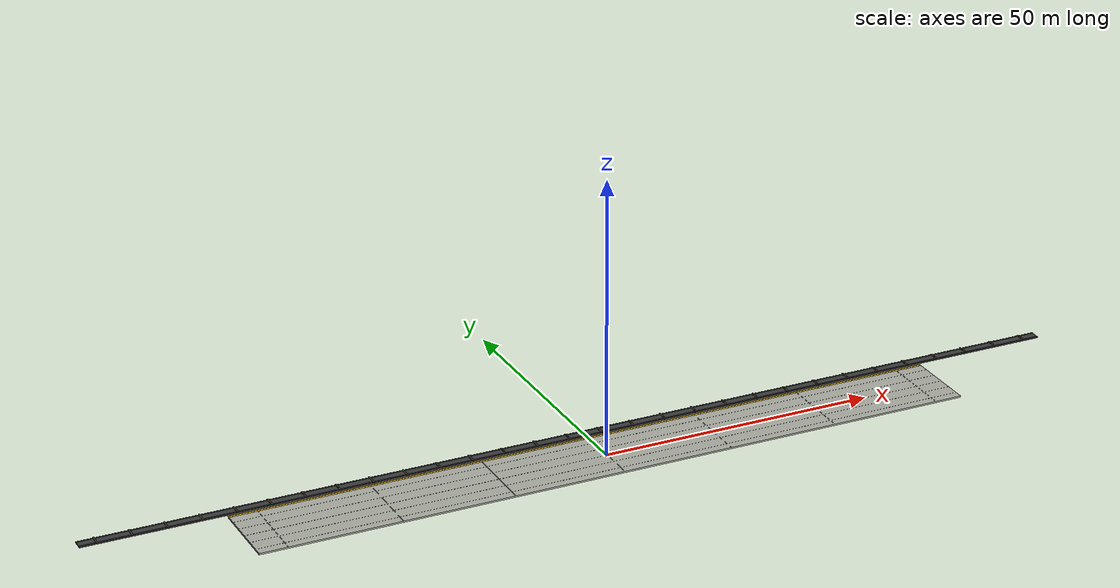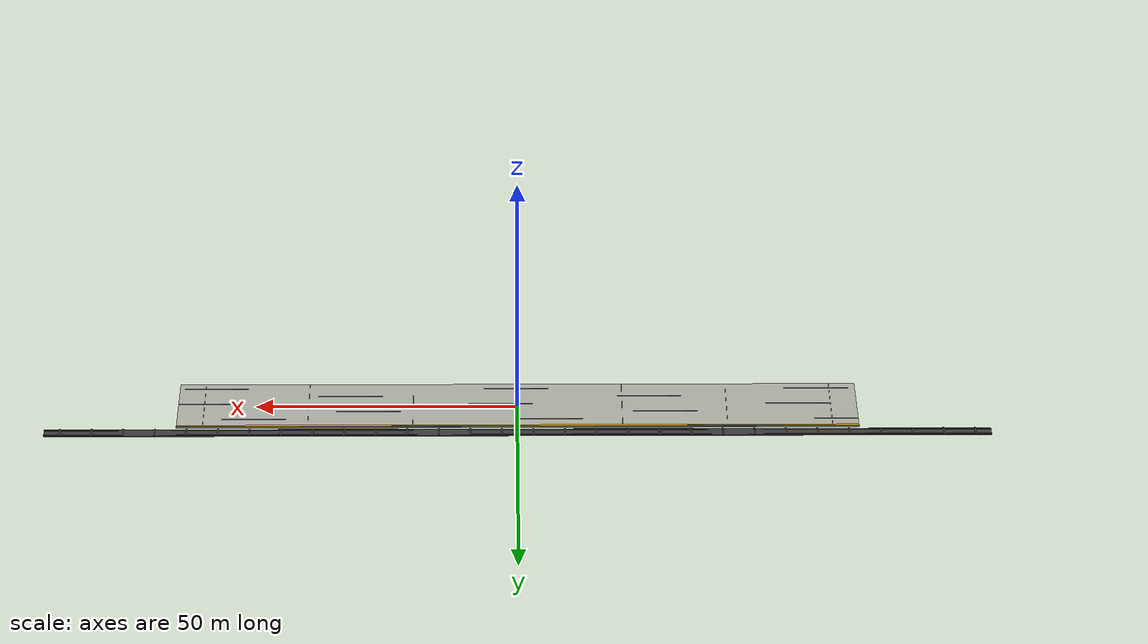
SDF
<sdf version="1.8">
 <world name="metro_station">
  <model name="station_platform">
   <static>true</static>
   <link name="platform_link">
    <collision name="platform_collision">
     <pose>0 0 0.15 0 0 0</pose>
     <geometry><box><size>130.0 14.0 0.3</size></box></geometry>
    </collision>
    <visual name="platform_top_visual">
     <pose>0 0 0.15 0 0 0</pose>
     <geometry><box><size>130.0 14.0 0.3</size></box></geometry>
     <material><ambient>0.50 0.52 0.50 1</ambient><diffuse>0.66 0.67 0.63 1</diffuse></material>
    </visual>
    <visual name="platform_front_edge">
     <pose>0 6.95 0.31 0 0 0</pose>
     <geometry><box><size>130.0 0.10 0.02</size></box></geometry>
     <material><ambient>0.38 0.39 0.38 1</ambient><diffuse>0.50 0.51 0.50 1</diffuse></material>
    </visual>
    <visual name="safety_line_visual">
     <pose>0 6.85 0.305 0 0 0</pose>
     <geometry><box><size>130.0 0.10 0.01</size></box></geometry>
     <material><ambient>0.96 0.72 0.04 1</ambient><diffuse>0.98 0.78 0.08 1</diffuse></material>
    </visual>
    <visual name="tactile_strip_visual">
     <pose>0 6.55 0.305 0 0 0</pose>
     <geometry><box><size>130.0 0.35 0.01</size></box></geometry>
     <material><ambient>0.82 0.62 0.06 1</ambient><diffuse>0.88 0.68 0.10 1</diffuse></material>
    </visual>
    <visual name="platform_inlay_0">
     <pose>0 -5.5 0.305 0 0 0</pose>
     <geometry><box><size>130.0 0.04 0.008</size></box></geometry>
     <material><ambient>0.35 0.38 0.40 1</ambient><diffuse>0.45 0.48 0.50 1</diffuse></material>
    </visual>
    <visual name="platform_inlay_1">
     <pose>0 -3.0 0.305 0 0 0</pose>
     <geometry><box><size>130.0 0.04 0.008</size></box></geometry>
     <material><ambient>0.35 0.38 0.40 1</ambient><diffuse>0.45 0.48 0.50 1</diffuse></material>
    </visual>
    <visual name="platform_inlay_2">
     <pose>0 -0.5 0.305 0 0 0</pose>
     <geometry><box><size>130.0 0.04 0.008</size></box></geometry>
     <material><ambient>0.35 0.38 0.40 1</ambient><diffuse>0.45 0.48 0.50 1</diffuse></material>
    </visual>
    <visual name="platform_inlay_3">
     <pose>0 2.0 0.305 0 0 0</pose>
     <geometry><box><size>130.0 0.04 0.008</size></box></geometry>
     <material><ambient>0.35 0.38 0.40 1</ambient><diffuse>0.45 0.48 0.50 1</diffuse></material>
    </visual>
    <visual name="platform_inlay_4">
     <pose>0 4.5 0.305 0 0 0</pose>
     <geometry><box><size>130.0 0.04 0.008</size></box></geometry>
     <material><ambient>0.35 0.38 0.40 1</ambient><diffuse>0.45 0.48 0.50 1</diffuse></material>
    </visual>
    <visual name="platform_tile_band_0">
     <pose>-60 0 0.305 0 0 0</pose>
     <geometry><box><size>0.06 14.0 0.008</size></box></geometry>
     <material><ambient>0.42 0.44 0.43 1</ambient><diffuse>0.55 0.57 0.55 1</diffuse></material>
    </visual>
    <visual name="platform_tile_band_1">
     <pose>-40 0 0.305 0 0 0</pose>
     <geometry><box><size>0.06 14.0 0.008</size></box></geometry>
     <material><ambient>0.42 0.44 0.43 1</ambient><diffuse>0.55 0.57 0.55 1</diffuse></material>
    </visual>
    <visual name="platform_tile_band_2">
     <pose>-20 0 0.305 0 0 0</pose>
     <geometry><box><size>0.06 14.0 0.008</size></box></geometry>
     <material><ambient>0.42 0.44 0.43 1</ambient><diffuse>0.55 0.57 0.55 1</diffuse></material>
    </visual>
    <visual name="platform_tile_band_3">
     <pose>0 0 0.305 0 0 0</pose>
     <geometry><box><size>0.06 14.0 0.008</size></box></geometry>
     <material><ambient>0.42 0.44 0.43 1</ambient><diffuse>0.55 0.57 0.55 1</diffuse></material>
    </visual>
    <visual name="platform_tile_band_4">
     <pose>20 0 0.305 0 0 0</pose>
     <geometry><box><size>0.06 14.0 0.008</size></box></geometry>
     <material><ambient>0.42 0.44 0.43 1</ambient><diffuse>0.55 0.57 0.55 1</diffuse></material>
    </visual>
    <visual name="platform_tile_band_5">
     <pose>40 0 0.305 0 0 0</pose>
     <geometry><box><size>0.06 14.0 0.008</size></box></geometry>
     <material><ambient>0.42 0.44 0.43 1</ambient><diffuse>0.55 0.57 0.55 1</diffuse></material>
    </visual>
    <visual name="platform_tile_band_6">
     <pose>60 0 0.305 0 0 0</pose>
     <geometry><box><size>0.06 14.0 0.008</size></box></geometry>
     <material><ambient>0.42 0.44 0.43 1</ambient><diffuse>0.55 0.57 0.55 1</diffuse></material>
    </visual>
   </link>
  </model>
  <model name="track_bed_positive_y">
   <static>true</static>
   <link name="track_link_positive_y">
    <collision name="track_collision_positive_y">
     <pose>0 8.65 0.10 0 0 0</pose>
     <geometry><box><size>180.0 2.0 0.20</size></box></geometry>
    </collision>
    <visual name="track_ballast_positive_y">
     <pose>0 8.65 0.10 0 0 0</pose>
     <geometry><box><size>180.0 2.0 0.20</size></box></geometry>
     <material><ambient>0.16 0.16 0.16 1</ambient><diffuse>0.23 0.23 0.23 1</diffuse></material>
    </visual>
    <visual name="rail_inner_positive_y">
     <pose>0 7.95 0.24 0 0 0</pose>
     <geometry><box><size>180.0 0.08 0.08</size></box></geometry>
     <material>
      <ambient>0.34 0.36 0.39 1</ambient>
      <diffuse>0.50 0.52 0.55 1</diffuse>
      <specular>0.8 0.8 0.8 1</specular>
     </material>
    </visual>
    <visual name="rail_outer_positive_y">
     <pose>0 9.35 0.24 0 0 0</pose>
     <geometry><box><size>180.0 0.08 0.08</size></box></geometry>
     <material>
      <ambient>0.34 0.36 0.39 1</ambient>
      <diffuse>0.50 0.52 0.55 1</diffuse>
      <specular>0.8 0.8 0.8 1</specular>
     </material>
    </visual>
    <visual name="sleeper_positive_y_00">
     <pose>-87.0 8.65 0.245 0 0 0</pose>
     <geometry><box><size>0.28 2.15 0.08</size></box></geometry>
     <material><ambient>0.24 0.20 0.16 1</ambient><diffuse>0.32 0.27 0.21 1</diffuse></material>
    </visual>
    <visual name="sleeper_positive_y_01">
     <pose>-81.0 8.65 0.245 0 0 0</pose>
     <geometry><box><size>0.28 2.15 0.08</size></box></geometry>
     <material><ambient>0.24 0.20 0.16 1</ambient><diffuse>0.32 0.27 0.21 1</diffuse></material>
    </visual>
    <visual name="sleeper_positive_y_02">
     <pose>-75.0 8.65 0.245 0 0 0</pose>
     <geometry><box><size>0.28 2.15 0.08</size></box></geometry>
     <material><ambient>0.24 0.20 0.16 1</ambient><diffuse>0.32 0.27 0.21 1</diffuse></material>
    </visual>
    <visual name="sleeper_positive_y_03">
     <pose>-69.0 8.65 0.245 0 0 0</pose>
     <geometry><box><size>0.28 2.15 0.08</size></box></geometry>
     <material><ambient>0.24 0.20 0.16 1</ambient><diffuse>0.32 0.27 0.21 1</diffuse></material>
    </visual>
    <visual name="sleeper_positive_y_04">
     <pose>-63.0 8.65 0.245 0 0 0</pose>
     <geometry><box><size>0.28 2.15 0.08</size></box></geometry>
     <material><ambient>0.24 0.20 0.16 1</ambient><diffuse>0.32 0.27 0.21 1</diffuse></material>
    </visual>
    <visual name="sleeper_positive_y_05">
     <pose>-57.0 8.65 0.245 0 0 0</pose>
     <geometry><box><size>0.28 2.15 0.08</size></box></geometry>
     <material><ambient>0.24 0.20 0.16 1</ambient><diffuse>0.32 0.27 0.21 1</diffuse></material>
    </visual>
    <visual name="sleeper_positive_y_06">
     <pose>-51.0 8.65 0.245 0 0 0</pose>
     <geometry><box><size>0.28 2.15 0.08</size></box></geometry>
     <material><ambient>0.24 0.20 0.16 1</ambient><diffuse>0.32 0.27 0.21 1</diffuse></material>
    </visual>
    <visual name="sleeper_positive_y_07">
     <pose>-45.0 8.65 0.245 0 0 0</pose>
     <geometry><box><size>0.28 2.15 0.08</size></box></geometry>
     <material><ambient>0.24 0.20 0.16 1</ambient><diffuse>0.32 0.27 0.21 1</diffuse></material>
    </visual>
    <visual name="sleeper_positive_y_08">
     <pose>-39.0 8.65 0.245 0 0 0</pose>
     <geometry><box><size>0.28 2.15 0.08</size></box></geometry>
     <material><ambient>0.24 0.20 0.16 1</ambient><diffuse>0.32 0.27 0.21 1</diffuse></material>
    </visual>
    <visual name="sleeper_positive_y_09">
     <pose>-33.0 8.65 0.245 0 0 0</pose>
     <geometry><box><size>0.28 2.15 0.08</size></box></geometry>
     <material><ambient>0.24 0.20 0.16 1</ambient><diffuse>0.32 0.27 0.21 1</diffuse></material>
    </visual>
    <visual name="sleeper_positive_y_10">
     <pose>-27.0 8.65 0.245 0 0 0</pose>
     <geometry><box><size>0.28 2.15 0.08</size></box></geometry>
     <material><ambient>0.24 0.20 0.16 1</ambient><diffuse>0.32 0.27 0.21 1</diffuse></material>
    </visual>
    <visual name="sleeper_positive_y_11">
     <pose>-21.0 8.65 0.245 0 0 0</pose>
     <geometry><box><size>0.28 2.15 0.08</size></box></geometry>
     <material><ambient>0.24 0.20 0.16 1</ambient><diffuse>0.32 0.27 0.21 1</diffuse></material>
    </visual>
    <visual name="sleeper_positive_y_12">
     <pose>-15.0 8.65 0.245 0 0 0</pose>
     <geometry><box><size>0.28 2.15 0.08</size></box></geometry>
     <material><ambient>0.24 0.20 0.16 1</ambient><diffuse>0.32 0.27 0.21 1</diffuse></material>
    </visual>
    <visual name="sleeper_positive_y_13">
     <pose>-9.0 8.65 0.245 0 0 0</pose>
     <geometry><box><size>0.28 2.15 0.08</size></box></geometry>
     <material><ambient>0.24 0.20 0.16 1</ambient><diffuse>0.32 0.27 0.21 1</diffuse></material>
    </visual>
    <visual name="sleeper_positive_y_14">
     <pose>-3.0 8.65 0.245 0 0 0</pose>
     <geometry><box><size>0.28 2.15 0.08</size></box></geometry>
     <material><ambient>0.24 0.20 0.16 1</ambient><diffuse>0.32 0.27 0.21 1</diffuse></material>
    </visual>
    <visual name="sleeper_positive_y_15">
     <pose>3.0 8.65 0.245 0 0 0</pose>
     <geometry><box><size>0.28 2.15 0.08</size></box></geometry>
     <material><ambient>0.24 0.20 0.16 1</ambient><diffuse>0.32 0.27 0.21 1</diffuse></material>
    </visual>
    <visual name="sleeper_positive_y_16">
     <pose>9.0 8.65 0.245 0 0 0</pose>
     <geometry><box><size>0.28 2.15 0.08</size></box></geometry>
     <material><ambient>0.24 0.20 0.16 1</ambient><diffuse>0.32 0.27 0.21 1</diffuse></material>
    </visual>
    <visual name="sleeper_positive_y_17">
     <pose>15.0 8.65 0.245 0 0 0</pose>
     <geometry><box><size>0.28 2.15 0.08</size></box></geometry>
     <material><ambient>0.24 0.20 0.16 1</ambient><diffuse>0.32 0.27 0.21 1</diffuse></material>
    </visual>
    <visual name="sleeper_positive_y_18">
     <pose>21.0 8.65 0.245 0 0 0</pose>
     <geometry><box><size>0.28 2.15 0.08</size></box></geometry>
     <material><ambient>0.24 0.20 0.16 1</ambient><diffuse>0.32 0.27 0.21 1</diffuse></material>
    </visual>
    <visual name="sleeper_positive_y_19">
     <pose>27.0 8.65 0.245 0 0 0</pose>
     <geometry><box><size>0.28 2.15 0.08</size></box></geometry>
     <material><ambient>0.24 0.20 0.16 1</ambient><diffuse>0.32 0.27 0.21 1</diffuse></material>
    </visual>
    <visual name="sleeper_positive_y_20">
     <pose>33.0 8.65 0.245 0 0 0</pose>
     <geometry><box><size>0.28 2.15 0.08</size></box></geometry>
     <material><ambient>0.24 0.20 0.16 1</ambient><diffuse>0.32 0.27 0.21 1</diffuse></material>
    </visual>
    <visual name="sleeper_positive_y_21">
     <pose>39.0 8.65 0.245 0 0 0</pose>
     <geometry><box><size>0.28 2.15 0.08</size></box></geometry>
     <material><ambient>0.24 0.20 0.16 1</ambient><diffuse>0.32 0.27 0.21 1</diffuse></material>
    </visual>
    <visual name="sleeper_positive_y_22">
     <pose>45.0 8.65 0.245 0 0 0</pose>
     <geometry><box><size>0.28 2.15 0.08</size></box></geometry>
     <material><ambient>0.24 0.20 0.16 1</ambient><diffuse>0.32 0.27 0.21 1</diffuse></material>
    </visual>
    <visual name="sleeper_positive_y_23">
     <pose>51.0 8.65 0.245 0 0 0</pose>
     <geometry><box><size>0.28 2.15 0.08</size></box></geometry>
     <material><ambient>0.24 0.20 0.16 1</ambient><diffuse>0.32 0.27 0.21 1</diffuse></material>
    </visual>
    <visual name="sleeper_positive_y_24">
     <pose>57.0 8.65 0.245 0 0 0</pose>
     <geometry><box><size>0.28 2.15 0.08</size></box></geometry>
     <material><ambient>0.24 0.20 0.16 1</ambient><diffuse>0.32 0.27 0.21 1</diffuse></material>
    </visual>
    <visual name="sleeper_positive_y_25">
     <pose>63.0 8.65 0.245 0 0 0</pose>
     <geometry><box><size>0.28 2.15 0.08</size></box></geometry>
     <material><ambient>0.24 0.20 0.16 1</ambient><diffuse>0.32 0.27 0.21 1</diffuse></material>
    </visual>
    <visual name="sleeper_positive_y_26">
     <pose>69.0 8.65 0.245 0 0 0</pose>
     <geometry><box><size>0.28 2.15 0.08</size></box></geometry>
     <material><ambient>0.24 0.20 0.16 1</ambient><diffuse>0.32 0.27 0.21 1</diffuse></material>
    </visual>
    <visual name="sleeper_positive_y_27">
     <pose>75.0 8.65 0.245 0 0 0</pose>
     <geometry><box><size>0.28 2.15 0.08</size></box></geometry>
     <material><ambient>0.24 0.20 0.16 1</ambient><diffuse>0.32 0.27 0.21 1</diffuse></material>
    </visual>
    <visual name="sleeper_positive_y_28">
     <pose>81.0 8.65 0.245 0 0 0</pose>
     <geometry><box><size>0.28 2.15 0.08</size></box></geometry>
     <material><ambient>0.24 0.20 0.16 1</ambient><diffuse>0.32 0.27 0.21 1</diffuse></material>
    </visual>
    <visual name="sleeper_positive_y_29">
     <pose>87.0 8.65 0.245 0 0 0</pose>
     <geometry><box><size>0.28 2.15 0.08</size></box></geometry>
     <material><ambient>0.24 0.20 0.16 1</ambient><diffuse>0.32 0.27 0.21 1</diffuse></material>
    </visual>
   </link>
  </model>
 </world>
</sdf>
